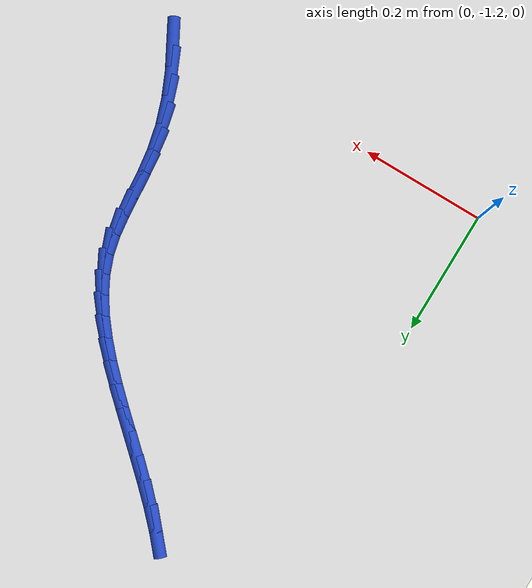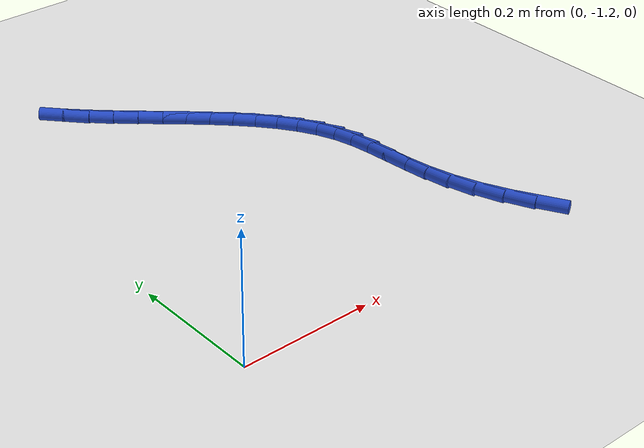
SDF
<sdf version="1.6">
 <world name="default">
  <model name="ground_plane">
   <static>1</static>
   <link name="link">
    <collision name="collision">
     <geometry><plane><normal>0 0 1</normal><size>100 100</size></plane></geometry>
     <surface><friction><ode><mu>100</mu><mu2>50</mu2></ode></friction></surface>
    </collision>
    <visual name="visual">
     <cast_shadows>0</cast_shadows>
     <geometry><plane><normal>0 0 1</normal><size>100 100</size></plane></geometry>
     <material>
      <script><uri>file://media/materials/scripts/gazebo.material</uri><name>Gazebo/WhiteGlow</name></script>
     </material>
    </visual>
   </link>
  </model>
  <model name="line">
   <link name="link_223">
    <pose>0.548408633561105 -1.187029641714455 0.01 0 1.57 -1.0624991120322733</pose>
    <collision name="collision">
     <geometry><cylinder><radius>0.01</radius><length>0.08</length></cylinder></geometry>
    </collision>
    <visual name="visual">
     <material>
      <script><name>Gazebo/Blue</name><uri>file://media/materials/scripts/gazebo.material</uri></script>
     </material>
     <geometry><cylinder><radius>0.01</radius><length>0.08</length></cylinder></geometry>
    </visual>
   </link>
   <link name="link_224">
    <pose>0.5258629583727349 -1.146561768830809 0.01 0 1.57 -1.1425047487464959</pose>
    <collision name="collision">
     <geometry><cylinder><radius>0.01</radius><length>0.08</length></cylinder></geometry>
    </collision>
    <visual name="visual">
     <material>
      <script><name>Gazebo/Blue</name><uri>file://media/materials/scripts/gazebo.material</uri></script>
     </material>
     <geometry><cylinder><radius>0.01</radius><length>0.08</length></cylinder></geometry>
    </visual>
   </link>
   <link name="link_225">
    <pose>0.506948443972701 -1.1051329829175018 0.01 0 1.57 -1.2311013095797543</pose>
    <collision name="collision">
     <geometry><cylinder><radius>0.01</radius><length>0.08</length></cylinder></geometry>
    </collision>
    <visual name="visual">
     <material>
      <script><name>Gazebo/Blue</name><uri>file://media/materials/scripts/gazebo.material</uri></script>
     </material>
     <geometry><cylinder><radius>0.01</radius><length>0.08</length></cylinder></geometry>
    </visual>
   </link>
   <link name="link_226">
    <pose>0.49242842591136243 -1.0640456200353439 0.01 0 1.57 -1.3328442500516235</pose>
    <collision name="collision">
     <geometry><cylinder><radius>0.01</radius><length>0.08</length></cylinder></geometry>
    </collision>
    <visual name="visual">
     <material>
      <script><name>Gazebo/Blue</name><uri>file://media/materials/scripts/gazebo.material</uri></script>
     </material>
     <geometry><cylinder><radius>0.01</radius><length>0.08</length></cylinder></geometry>
    </visual>
   </link>
   <link name="link_227">
    <pose>0.48283005338831136 -1.0244724083730852 0.01 0 1.57 -1.4198287750089607</pose>
    <collision name="collision">
     <geometry><cylinder><radius>0.01</radius><length>0.08</length></cylinder></geometry>
    </collision>
    <visual name="visual">
     <material>
      <script><name>Gazebo/Blue</name><uri>file://media/materials/scripts/gazebo.material</uri></script>
     </material>
     <geometry><cylinder><radius>0.01</radius><length>0.08</length></cylinder></geometry>
    </visual>
   </link>
   <link name="link_228">
    <pose>0.4770855791657916 -0.9867108725663017 0.01 0 1.57 -1.4706674364260786</pose>
    <collision name="collision">
     <geometry><cylinder><radius>0.01</radius><length>0.08</length></cylinder></geometry>
    </collision>
    <visual name="visual">
     <material>
      <script><name>Gazebo/Blue</name><uri>file://media/materials/scripts/gazebo.material</uri></script>
     </material>
     <geometry><cylinder><radius>0.01</radius><length>0.08</length></cylinder></geometry>
    </visual>
   </link>
   <link name="link_229">
    <pose>0.4734673937926987 -0.9506964361509584 0.01 0 1.57 -1.4772363459727393</pose>
    <collision name="collision">
     <geometry><cylinder><radius>0.01</radius><length>0.08</length></cylinder></geometry>
    </collision>
    <visual name="visual">
     <material>
      <script><name>Gazebo/Blue</name><uri>file://media/materials/scripts/gazebo.material</uri></script>
     </material>
     <geometry><cylinder><radius>0.01</radius><length>0.08</length></cylinder></geometry>
    </visual>
   </link>
   <link name="link_230">
    <pose>0.4702457872081756 -0.9163633699479787 0.01 0 1.57 -1.4324709322679943</pose>
    <collision name="collision">
     <geometry><cylinder><radius>0.01</radius><length>0.08</length></cylinder></geometry>
    </collision>
    <visual name="visual">
     <material>
      <script><name>Gazebo/Blue</name><uri>file://media/materials/scripts/gazebo.material</uri></script>
     </material>
     <geometry><cylinder><radius>0.01</radius><length>0.08</length></cylinder></geometry>
    </visual>
   </link>
   <link name="link_231">
    <pose>0.4656910493513644 -0.8836459447782815 0.01 0 1.57 -1.3311609224445813</pose>
    <collision name="collision">
     <geometry><cylinder><radius>0.01</radius><length>0.08</length></cylinder></geometry>
    </collision>
    <visual name="visual">
     <material>
      <script><name>Gazebo/Blue</name><uri>file://media/materials/scripts/gazebo.material</uri></script>
     </material>
     <geometry><cylinder><radius>0.01</radius><length>0.08</length></cylinder></geometry>
    </visual>
   </link>
   <link name="link_232">
    <pose>0.4580758468942823 -0.8524782908644001 0.01 0 1.57 -1.1930808228258893</pose>
    <collision name="collision">
     <geometry><cylinder><radius>0.01</radius><length>0.08</length></cylinder></geometry>
    </collision>
    <visual name="visual">
     <material>
      <script><name>Gazebo/Blue</name><uri>file://media/materials/scripts/gazebo.material</uri></script>
     </material>
     <geometry><cylinder><radius>0.01</radius><length>0.08</length></cylinder></geometry>
    </visual>
   </link>
   <link name="link_233">
    <pose>0.4462839932455356 -0.8227583853356434 0.01 0 1.57 -1.0676227269604548</pose>
    <collision name="collision">
     <geometry><cylinder><radius>0.01</radius><length>0.08</length></cylinder></geometry>
    </collision>
    <visual name="visual">
     <material>
      <script><name>Gazebo/Blue</name><uri>file://media/materials/scripts/gazebo.material</uri></script>
     </material>
     <geometry><cylinder><radius>0.01</radius><length>0.08</length></cylinder></geometry>
    </visual>
   </link>
   <link name="link_234">
    <pose>0.43061973063516146 -0.7943001782087986 0.01 0 1.57 -0.9636322692662233</pose>
    <collision name="collision">
     <geometry><cylinder><radius>0.01</radius><length>0.08</length></cylinder></geometry>
    </collision>
    <visual name="visual">
     <material>
      <script><name>Gazebo/Blue</name><uri>file://media/materials/scripts/gazebo.material</uri></script>
     </material>
     <geometry><cylinder><radius>0.01</radius><length>0.08</length></cylinder></geometry>
    </visual>
   </link>
   <link name="link_235">
    <pose>0.41158863069057333 -0.7669057096269087 0.01 0 1.57 -0.8808573158366211</pose>
    <collision name="collision">
     <geometry><cylinder><radius>0.01</radius><length>0.08</length></cylinder></geometry>
    </collision>
    <visual name="visual">
     <material>
      <script><name>Gazebo/Blue</name><uri>file://media/materials/scripts/gazebo.material</uri></script>
     </material>
     <geometry><cylinder><radius>0.01</radius><length>0.08</length></cylinder></geometry>
    </visual>
   </link>
   <link name="link_236">
    <pose>0.38969626503918425 -0.7403770197330163 0.01 0 1.57 -0.8175731614327251</pose>
    <collision name="collision">
     <geometry><cylinder><radius>0.01</radius><length>0.08</length></cylinder></geometry>
    </collision>
    <visual name="visual">
     <material>
      <script><name>Gazebo/Blue</name><uri>file://media/materials/scripts/gazebo.material</uri></script>
     </material>
     <geometry><cylinder><radius>0.01</radius><length>0.08</length></cylinder></geometry>
    </visual>
   </link>
   <link name="link_237">
    <pose>0.3654482053084086 -0.7145161486701656 0.01 0 1.57 -0.7716646870044387</pose>
    <collision name="collision">
     <geometry><cylinder><radius>0.01</radius><length>0.08</length></cylinder></geometry>
    </collision>
    <visual name="visual">
     <material>
      <script><name>Gazebo/Blue</name><uri>file://media/materials/scripts/gazebo.material</uri></script>
     </material>
     <geometry><cylinder><radius>0.01</radius><length>0.08</length></cylinder></geometry>
    </visual>
   </link>
   <link name="link_238">
    <pose>0.33935002312565954 -0.689125136581399 0.01 0 1.57 -0.7412195755062624</pose>
    <collision name="collision">
     <geometry><cylinder><radius>0.01</radius><length>0.08</length></cylinder></geometry>
    </collision>
    <visual name="visual">
     <material>
      <script><name>Gazebo/Blue</name><uri>file://media/materials/scripts/gazebo.material</uri></script>
     </material>
     <geometry><cylinder><radius>0.01</radius><length>0.08</length></cylinder></geometry>
    </visual>
   </link>
   <link name="link_239">
    <pose>0.3119072901183499 -0.6640060236097589 0.01 0 1.57 -0.7247800869705338</pose>
    <collision name="collision">
     <geometry><cylinder><radius>0.01</radius><length>0.08</length></cylinder></geometry>
    </collision>
    <visual name="visual">
     <material>
      <script><name>Gazebo/Blue</name><uri>file://media/materials/scripts/gazebo.material</uri></script>
     </material>
     <geometry><cylinder><radius>0.01</radius><length>0.08</length></cylinder></geometry>
    </visual>
   </link>
   <link name="link_240">
    <pose>0.2836255779138937 -0.6389608498982892 0.01 0 1.57 -0.7214162745068786</pose>
    <collision name="collision">
     <geometry><cylinder><radius>0.01</radius><length>0.08</length></cylinder></geometry>
    </collision>
    <visual name="visual">
     <material>
      <script><name>Gazebo/Blue</name><uri>file://media/materials/scripts/gazebo.material</uri></script>
     </material>
     <geometry><cylinder><radius>0.01</radius><length>0.08</length></cylinder></geometry>
    </visual>
   </link>
   <link name="link_241">
    <pose>0.2550104581397041 -0.613791655590032 0.01 0 1.57 -0.7307233396206343</pose>
    <collision name="collision">
     <geometry><cylinder><radius>0.01</radius><length>0.08</length></cylinder></geometry>
    </collision>
    <visual name="visual">
     <material>
      <script><name>Gazebo/Blue</name><uri>file://media/materials/scripts/gazebo.material</uri></script>
     </material>
     <geometry><cylinder><radius>0.01</radius><length>0.08</length></cylinder></geometry>
    </visual>
   </link>
   <link name="link_242">
    <pose>0.2265675024231943 -0.5883004808280307 0.01 0 1.57 -0.752791195145604</pose>
    <collision name="collision">
     <geometry><cylinder><radius>0.01</radius><length>0.08</length></cylinder></geometry>
    </collision>
    <visual name="visual">
     <material>
      <script><name>Gazebo/Blue</name><uri>file://media/materials/scripts/gazebo.material</uri></script>
     </material>
     <geometry><cylinder><radius>0.01</radius><length>0.08</length></cylinder></geometry>
    </visual>
   </link>
   <link name="link_243">
    <pose>0.19880228239177794 -0.562289365755328 0.01 0 1.57 -0.7881574878688513</pose>
    <collision name="collision">
     <geometry><cylinder><radius>0.01</radius><length>0.08</length></cylinder></geometry>
    </collision>
    <visual name="visual">
     <material>
      <script><name>Gazebo/Blue</name><uri>file://media/materials/scripts/gazebo.material</uri></script>
     </material>
     <geometry><cylinder><radius>0.01</radius><length>0.08</length></cylinder></geometry>
    </visual>
   </link>
   <link name="link_244">
    <pose>0.17222036967286838 -0.5355603505149671 0.01 0 1.57 -0.8377285498324617</pose>
    <collision name="collision">
     <geometry><cylinder><radius>0.01</radius><length>0.08</length></cylinder></geometry>
    </collision>
    <visual name="visual">
     <material>
      <script><name>Gazebo/Blue</name><uri>file://media/materials/scripts/gazebo.material</uri></script>
     </material>
     <geometry><cylinder><radius>0.01</radius><length>0.08</length></cylinder></geometry>
    </visual>
   </link>
  </model>
 </world>
</sdf>
